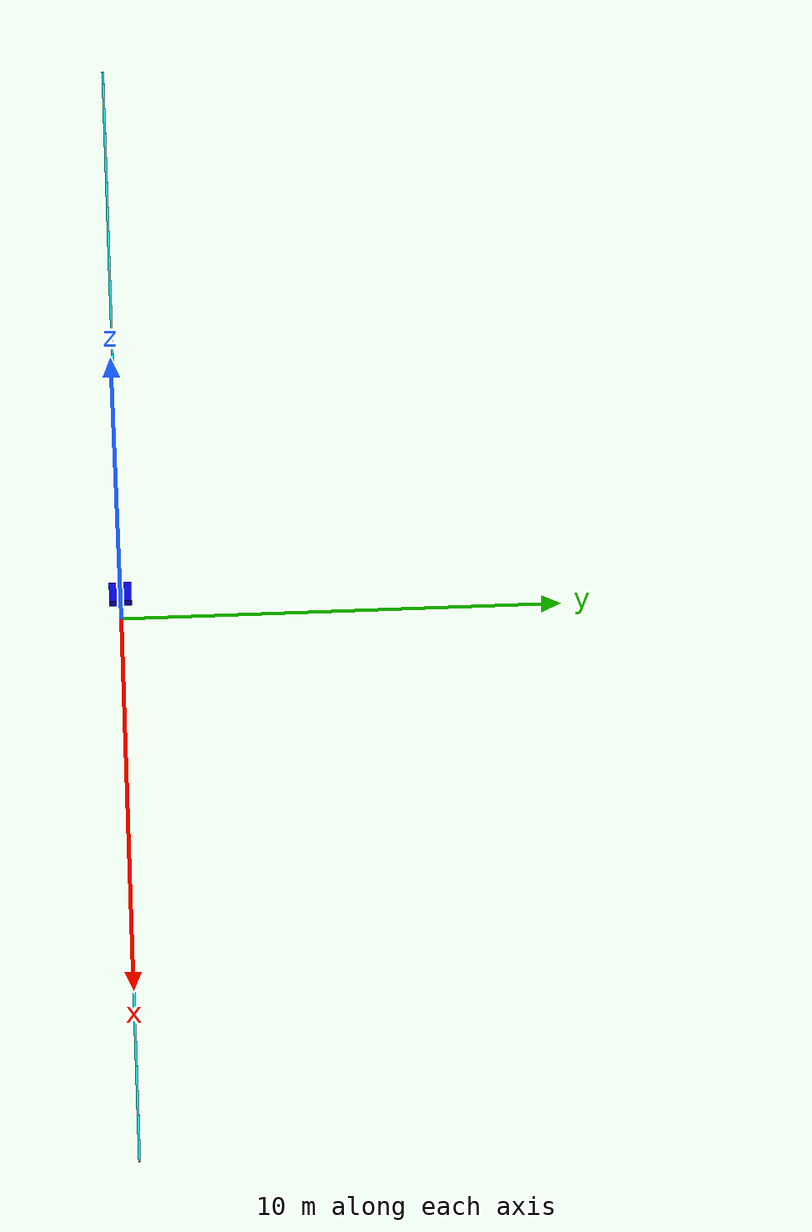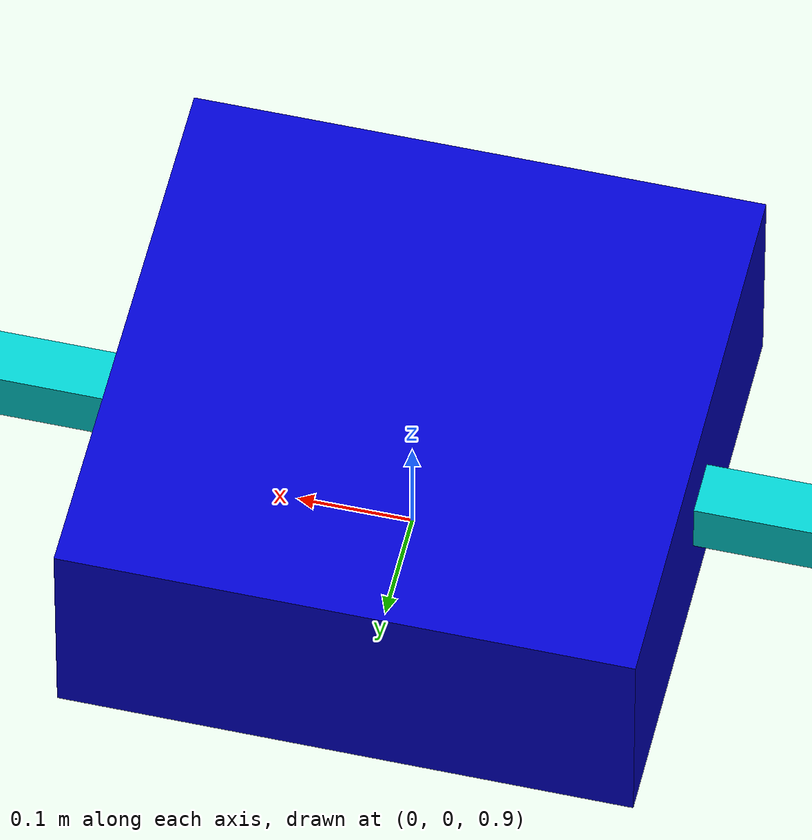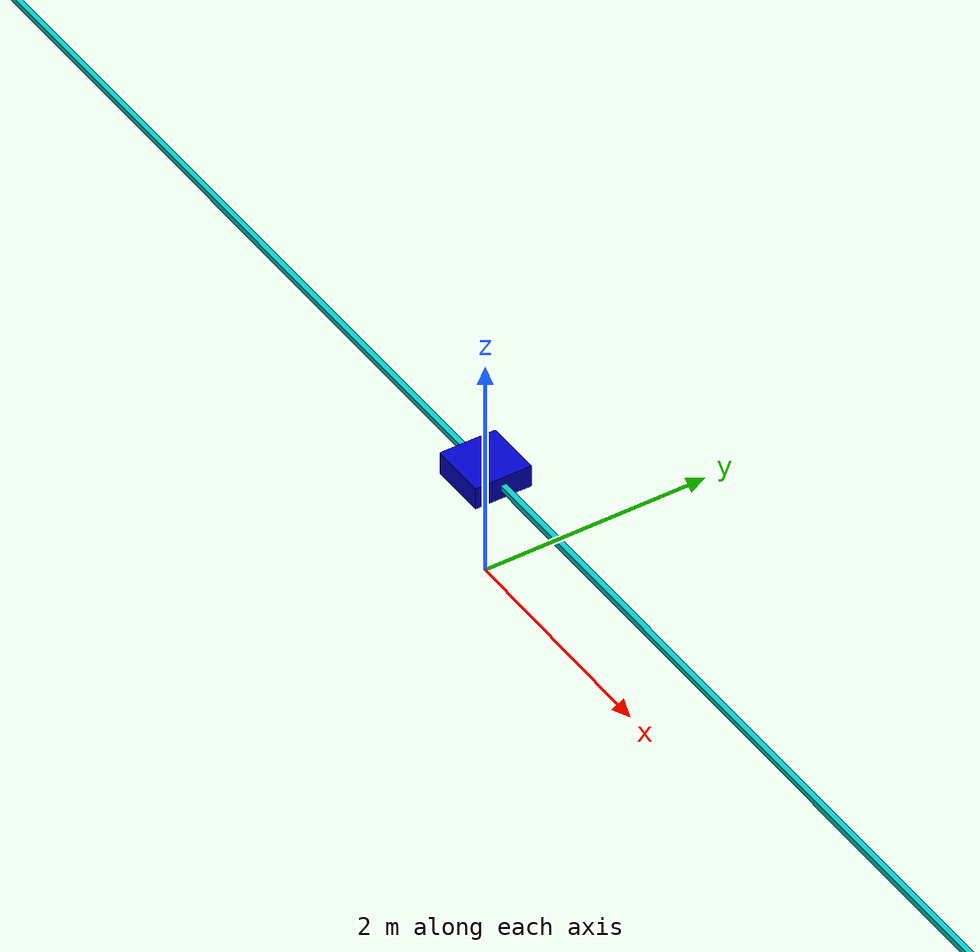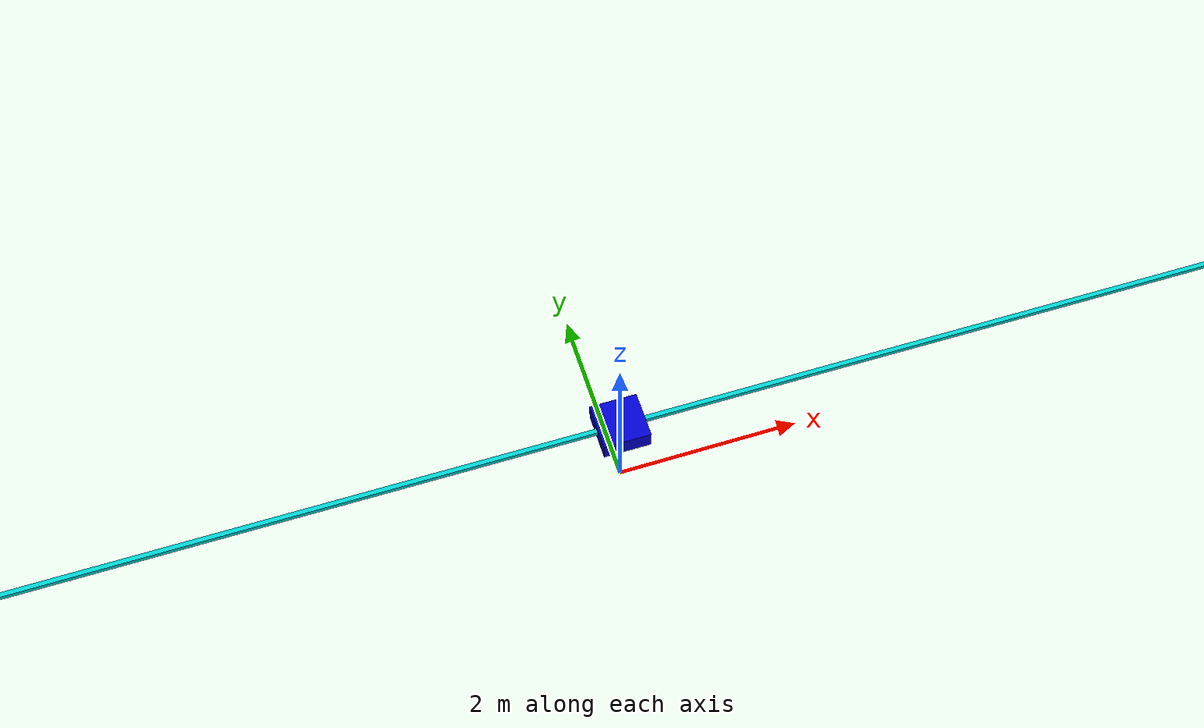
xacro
<?xml version="1.0" ?>

<robot name="cartopole" xmlns:xacro="http://ros.org/wiki/xacro">

<!-- ****************************************************** World Link *************************************************************** -->

  <link name="world"/>

<!-- ****************************************************** slideBar Link ************************************************************ -->

  <link name="slideBar">
    <visual>
      <geometry>
        <box size="30 0.05 0.05"/>
      </geometry>
      <origin xyz="0 0 0"/>
      <material name="green">
        <color rgba="0 0.8 .8 1"/>
      </material>
    </visual>
    <inertial>
      <mass value="100"/>
      <inertia ixx="1.0" ixy="0.0" ixz="0.0" iyy="1.0" iyz="0.0" izz="1.0"/>
    </inertial>
  </link>

  <gazebo reference="slideBar">
    <material>Gazebo/Orange</material>
  </gazebo>

<!-- ****************************************************** cart Link **************************************************************** -->

  <link name="cart">
    <visual>
      <geometry>
        <box size="0.5 0.5 0.2"/>
      </geometry>
      <origin xyz="0 0 0"/>
      <material name="blue">
        <color rgba="0 0 .8 1"/>
      </material>
    </visual>
    <inertial>
      <mass value="1"/>
      <inertia ixx="1.0" ixy="0.0" ixz="0.0" iyy="1.0" iyz="0.0" izz="1.0"/>
    </inertial>
  </link>

  <gazebo reference="cart">
    <material>Gazebo/Red</material>
  </gazebo>

  <!-- ****************************************************** world to slideBar Joint ************************************************** -->

  <joint name="world_to_base" type="fixed">
    <origin rpy="0 0 0" xyz="0 0 1"/>
    <parent link="world"/>
    <child link="slideBar"/>
  </joint>

<!-- ****************************************************** slideBar to cart Joint *************************************************** -->

  <joint name="slider_to_cart" type="prismatic">
    <axis xyz="1 0 0"/>
    <origin xyz="0.0 0.0 0.0"/>
    <parent link="slideBar"/>
    <child link="cart"/>
    <limit effort="1000.0" lower="-15" upper="15" velocity="30"/>
    <dynamics damping="0.0" friction="0.0"/>
  </joint>

<!-- ****************************************************** IMU Link ***************************************************************** -->

  <link name="imu">
    <inertial>
      <mass value="0.1"/>
      <inertia ixx="1.0" ixy="0" ixz="0" iyy="1.0" iyz="0" izz="1.0"/>
    </inertial>
  </link>

<!-- ****************************************************** cart to IMU joint ******************************************************** -->

  <joint name="cart_to_imu" type="fixed">
    <origin xyz="0.0 0.0 0.0"/>
    <parent link="cart"/>
    <child link="imu"/>
    <dynamics damping="0.0" friction="0.0"/>
  </joint>

<!-- ****************************************************** imu Gazebo *************************************************************** -->

  <gazebo reference="imu">
    <sensor name="cart_imu_sensor" type="imu">
      <always_on>1</always_on>
      <update_rate>10.0</update_rate>
    </sensor>
  </gazebo>

<!-- ****************************************************** Gazebo ROS2 Control ****************************************************** -->

  <ros2_control name="GazeboSystem" type="system">

    <hardware>
      <plugin>gazebo_ros2_control/GazeboSystem</plugin>
    </hardware>

    <joint name="slider_to_cart">
      <command_interface name="velocity">
        <param name="min">-10</param>
        <param name="max">10</param>
      </command_interface>
      <state_interface name="position"/>
      <state_interface name="velocity"/>
      <state_interface name="effort"/>
    </joint>

    <sensor name="cart_imu_sensor">
      <state_interface name="orientation.x"/>
      <state_interface name="orientation.y"/>
      <state_interface name="orientation.z"/>
      <state_interface name="orientation.w"/>
      <state_interface name="angular_velocity.x"/>
      <state_interface name="angular_velocity.y"/>
      <state_interface name="angular_velocity.z"/>
      <state_interface name="linear_acceleration.x"/>
      <state_interface name="linear_acceleration.y"/>
      <state_interface name="linear_acceleration.z"/>
    </sensor>

  </ros2_control>

<!-- ****************************************************** Gazebo ROS2 Plugin ******************************************************* -->

  <gazebo>
    <plugin filename="libgazebo_ros2_control.so" name="gazebo_ros2_control">
      <parameters>$(find gz_ros2_control)/config/cartpole_controller_velocity.yaml</parameters>
    </plugin>
  </gazebo>

<!-- ****************************************************** End ********************************************************************** -->

</robot>
